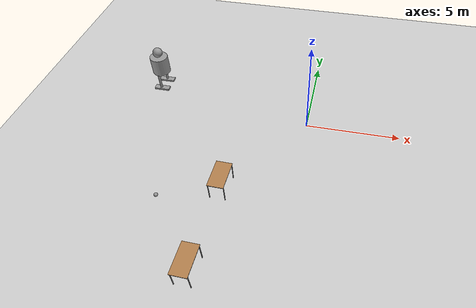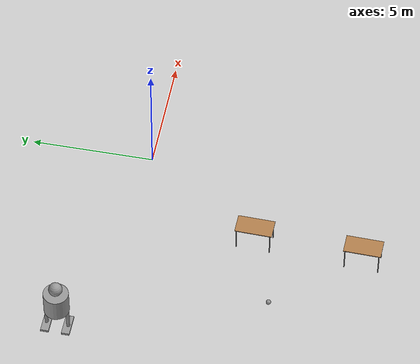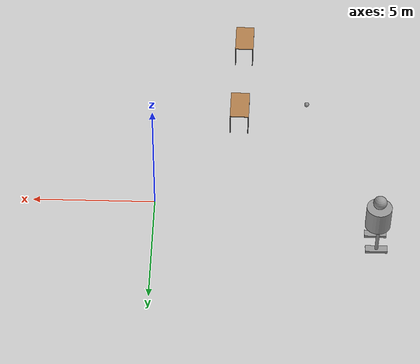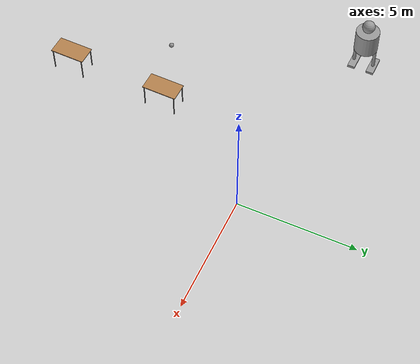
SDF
<sdf version="1.6">
 <world name="default">
  <model name="ground_plane">
   <static>1</static>
   <link name="link">
    <collision name="collision">
     <geometry><plane><normal>0 0 1</normal><size>100 100</size></plane></geometry>
     <surface>
      <contact><collide_bitmask>65535</collide_bitmask></contact>
      <friction><ode><mu>100</mu><mu2>50</mu2></ode></friction>
     </surface>
    </collision>
    <visual name="visual">
     <cast_shadows>0</cast_shadows>
     <geometry><plane><normal>0 0 1</normal><size>100 100</size></plane></geometry>
     <material>
      <script><uri>file://media/materials/scripts/gazebo.material</uri><name>Gazebo/Grey</name></script>
     </material>
    </visual>
   </link>
  </model>
  <model name="table_0_clone_1">
   <static>1</static>
   <link name="link">
    <collision name="surface">
     <pose>0 0 1 0 -0 0</pose>
     <geometry><box><size>1.5 0.8 0.03</size></box></geometry>
     <surface><friction><ode><mu>0.6</mu><mu2>0.6</mu2></ode></friction></surface>
    </collision>
    <visual name="visual1">
     <pose>0 0 1 0 -0 0</pose>
     <geometry><box><size>1.5 0.8 0.03</size></box></geometry>
     <material>
      <script><uri>file://media/materials/scripts/gazebo.material</uri><name>Gazebo/Wood</name></script>
     </material>
    </visual>
    <collision name="front_left_leg">
     <pose>0.68 0.38 0.5 0 -0 0</pose>
     <geometry><cylinder><radius>0.02</radius><length>1</length></cylinder></geometry>
    </collision>
    <visual name="front_left_leg">
     <pose>0.68 0.38 0.5 0 -0 0</pose>
     <geometry><cylinder><radius>0.02</radius><length>1</length></cylinder></geometry>
     <material>
      <script><uri>file://media/materials/scripts/gazebo.material</uri><name>Gazebo/Grey</name></script>
     </material>
    </visual>
    <collision name="front_right_leg">
     <pose>0.68 -0.38 0.5 0 -0 0</pose>
     <geometry><cylinder><radius>0.02</radius><length>1</length></cylinder></geometry>
    </collision>
    <visual name="front_right_leg">
     <pose>0.68 -0.38 0.5 0 -0 0</pose>
     <geometry><cylinder><radius>0.02</radius><length>1</length></cylinder></geometry>
     <material>
      <script><uri>file://media/materials/scripts/gazebo.material</uri><name>Gazebo/Grey</name></script>
     </material>
    </visual>
    <collision name="back_right_leg">
     <pose>-0.68 -0.38 0.5 0 -0 0</pose>
     <geometry><cylinder><radius>0.02</radius><length>1</length></cylinder></geometry>
    </collision>
    <visual name="back_right_leg">
     <pose>-0.68 -0.38 0.5 0 -0 0</pose>
     <geometry><cylinder><radius>0.02</radius><length>1</length></cylinder></geometry>
     <material>
      <script><uri>file://media/materials/scripts/gazebo.material</uri><name>Gazebo/Grey</name></script>
     </material>
    </visual>
    <collision name="back_left_leg">
     <pose>-0.68 0.38 0.5 0 -0 0</pose>
     <geometry><cylinder><radius>0.02</radius><length>1</length></cylinder></geometry>
    </collision>
    <visual name="back_left_leg">
     <pose>-0.68 0.38 0.5 0 -0 0</pose>
     <geometry><cylinder><radius>0.02</radius><length>1</length></cylinder></geometry>
     <material>
      <script><uri>file://media/materials/scripts/gazebo.material</uri><name>Gazebo/Grey</name></script>
     </material>
    </visual>
   </link>
   <pose>-3.58647 -9.28314 0 0 -0 1.54682</pose>
  </model>
  <model name="table_0_clone_2">
   <static>1</static>
   <link name="link">
    <collision name="surface">
     <pose>0 0 1 0 -0 0</pose>
     <geometry><box><size>1.5 0.8 0.03</size></box></geometry>
     <surface><friction><ode><mu>0.6</mu><mu2>0.6</mu2></ode></friction></surface>
    </collision>
    <visual name="visual1">
     <pose>0 0 1 0 -0 0</pose>
     <geometry><box><size>1.5 0.8 0.03</size></box></geometry>
     <material>
      <script><uri>file://media/materials/scripts/gazebo.material</uri><name>Gazebo/Wood</name></script>
     </material>
    </visual>
    <collision name="front_left_leg">
     <pose>0.68 0.38 0.5 0 -0 0</pose>
     <geometry><cylinder><radius>0.02</radius><length>1</length></cylinder></geometry>
    </collision>
    <visual name="front_left_leg">
     <pose>0.68 0.38 0.5 0 -0 0</pose>
     <geometry><cylinder><radius>0.02</radius><length>1</length></cylinder></geometry>
     <material>
      <script><uri>file://media/materials/scripts/gazebo.material</uri><name>Gazebo/Grey</name></script>
     </material>
    </visual>
    <collision name="front_right_leg">
     <pose>0.68 -0.38 0.5 0 -0 0</pose>
     <geometry><cylinder><radius>0.02</radius><length>1</length></cylinder></geometry>
    </collision>
    <visual name="front_right_leg">
     <pose>0.68 -0.38 0.5 0 -0 0</pose>
     <geometry><cylinder><radius>0.02</radius><length>1</length></cylinder></geometry>
     <material>
      <script><uri>file://media/materials/scripts/gazebo.material</uri><name>Gazebo/Grey</name></script>
     </material>
    </visual>
    <collision name="back_right_leg">
     <pose>-0.68 -0.38 0.5 0 -0 0</pose>
     <geometry><cylinder><radius>0.02</radius><length>1</length></cylinder></geometry>
    </collision>
    <visual name="back_right_leg">
     <pose>-0.68 -0.38 0.5 0 -0 0</pose>
     <geometry><cylinder><radius>0.02</radius><length>1</length></cylinder></geometry>
     <material>
      <script><uri>file://media/materials/scripts/gazebo.material</uri><name>Gazebo/Grey</name></script>
     </material>
    </visual>
    <collision name="back_left_leg">
     <pose>-0.68 0.38 0.5 0 -0 0</pose>
     <geometry><cylinder><radius>0.02</radius><length>1</length></cylinder></geometry>
    </collision>
    <visual name="back_left_leg">
     <pose>-0.68 0.38 0.5 0 -0 0</pose>
     <geometry><cylinder><radius>0.02</radius><length>1</length></cylinder></geometry>
     <material>
      <script><uri>file://media/materials/scripts/gazebo.material</uri><name>Gazebo/Grey</name></script>
     </material>
    </visual>
   </link>
   <pose>-3.41319 -4.88777 0 0 -0 1.54682</pose>
  </model>
  <model name="HumanoidRobot_0">
   <link name="link_0">
    <pose>0.00607 -0.402485 -0.763094 0 -0 0</pose>
    <inertial>
     <mass>0.0269632</mass>
     <inertia>
      <ixx>0.00025348</ixx>
      <ixy>0</ixy>
      <ixz>0</ixz>
      <iyy>0.00171945</iyy>
      <iyz>0</iyz>
      <izz>0.00193117</izz>
     </inertia>
    </inertial>
    <visual name="visual">
     <geometry><box><size>0.869453 0.321744 0.096398</size></box></geometry>
     <material>
      <lighting>1</lighting>
      <script><uri>file://media/materials/scripts/gazebo.material</uri><name>Gazebo/Grey</name></script>
      <shader type="pixel"><normal_map>__default__</normal_map></shader>
      <ambient>0.3 0.3 0.3 1</ambient>
      <diffuse>0.7 0.7 0.7 1</diffuse>
      <specular>0.01 0.01 0.01 1</specular>
      <emissive>0 0 0 1</emissive>
     </material>
    </visual>
    <collision name="collision">
     <geometry><box><size>0.869453 0.321744 0.096398</size></box></geometry>
     <surface>
      <friction>
       <ode><mu>1</mu><mu2>1</mu2><fdir1>0 0 0</fdir1><slip1>0</slip1><slip2>0</slip2></ode>
       <torsional>
        <coefficient>1</coefficient>
        <patch_radius>0</patch_radius>
        <surface_radius>0</surface_radius>
        <use_patch_radius>1</use_patch_radius>
        <ode><slip>0</slip></ode>
       </torsional>
      </friction>
      <bounce><restitution_coefficient>0</restitution_coefficient><threshold>1e+06</threshold></bounce>
      <contact>
       <collide_without_contact>0</collide_without_contact>
       <collide_without_contact_bitmask>1</collide_without_contact_bitmask>
       <collide_bitmask>1</collide_bitmask>
       <ode>
        <soft_cfm>0</soft_cfm>
        <soft_erp>0.2</soft_erp>
        <kp>1e+13</kp>
        <kd>1</kd>
        <max_vel>0.01</max_vel>
        <min_depth>0</min_depth>
       </ode>
       <bullet>
        <split_impulse>1</split_impulse>
        <split_impulse_penetration_threshold>-0.01</split_impulse_penetration_threshold>
        <soft_cfm>0</soft_cfm>
        <soft_erp>0.2</soft_erp>
        <kp>1e+13</kp>
        <kd>1</kd>
       </bullet>
      </contact>
     </surface>
    </collision>
   </link>
   <link name="link_0_clone">
    <pose>0.00607 0.426759 -0.763093 0 -0 0</pose>
    <inertial>
     <mass>0.0269632</mass>
     <inertia>
      <ixx>0.00025348</ixx>
      <ixy>0</ixy>
      <ixz>0</ixz>
      <iyy>0.00171945</iyy>
      <iyz>0</iyz>
      <izz>0.00193117</izz>
     </inertia>
    </inertial>
    <visual name="visual">
     <geometry><box><size>0.869453 0.321744 0.096398</size></box></geometry>
     <material>
      <lighting>1</lighting>
      <script><uri>file://media/materials/scripts/gazebo.material</uri><name>Gazebo/Grey</name></script>
      <shader type="pixel"><normal_map>__default__</normal_map></shader>
      <ambient>0.3 0.3 0.3 1</ambient>
      <diffuse>0.7 0.7 0.7 1</diffuse>
      <specular>0.01 0.01 0.01 1</specular>
      <emissive>0 0 0 1</emissive>
     </material>
    </visual>
    <collision name="collision">
     <geometry><box><size>0.869453 0.321744 0.096398</size></box></geometry>
     <surface>
      <friction>
       <ode><mu>1</mu><mu2>1</mu2><fdir1>0 0 0</fdir1><slip1>0</slip1><slip2>0</slip2></ode>
       <torsional>
        <coefficient>1</coefficient>
        <patch_radius>0</patch_radius>
        <surface_radius>0</surface_radius>
        <use_patch_radius>1</use_patch_radius>
        <ode><slip>0</slip></ode>
       </torsional>
      </friction>
      <bounce><restitution_coefficient>0</restitution_coefficient><threshold>1e+06</threshold></bounce>
      <contact>
       <collide_without_contact>0</collide_without_contact>
       <collide_without_contact_bitmask>1</collide_without_contact_bitmask>
       <collide_bitmask>1</collide_bitmask>
       <ode>
        <soft_cfm>0</soft_cfm>
        <soft_erp>0.2</soft_erp>
        <kp>1e+13</kp>
        <kd>1</kd>
        <max_vel>0.01</max_vel>
        <min_depth>0</min_depth>
       </ode>
       <bullet>
        <split_impulse>1</split_impulse>
        <split_impulse_penetration_threshold>-0.01</split_impulse_penetration_threshold>
        <soft_cfm>0</soft_cfm>
        <soft_erp>0.2</soft_erp>
        <kp>1e+13</kp>
        <kd>1</kd>
       </bullet>
      </contact>
     </surface>
    </collision>
   </link>
   <link name="link_1">
    <pose>-0.030345 -0.4389 -0.311292 0 -0 0</pose>
    <inertial>
     <mass>0.0180474</mass>
     <inertia>
      <ixx>0.00152431</ixx>
      <ixy>0</ixy>
      <ixz>0</ixz>
      <iyy>0.00152431</iyy>
      <iyz>0</iyz>
      <izz>4.07136e-05</izz>
     </inertia>
    </inertial>
    <visual name="visual">
     <geometry><cylinder><radius>0.0671703</radius><length>1</length></cylinder></geometry>
     <material>
      <lighting>1</lighting>
      <script><uri>file://media/materials/scripts/gazebo.material</uri><name>Gazebo/Grey</name></script>
      <shader type="pixel"/>
      <ambient>0.3 0.3 0.3 1</ambient>
      <diffuse>0.7 0.7 0.7 1</diffuse>
      <specular>0.01 0.01 0.01 1</specular>
      <emissive>0 0 0 1</emissive>
     </material>
    </visual>
    <collision name="collision">
     <geometry><cylinder><radius>0.06717</radius><length>1</length></cylinder></geometry>
     <surface>
      <friction>
       <ode><mu>1</mu><mu2>1</mu2><fdir1>0 0 0</fdir1><slip1>0</slip1><slip2>0</slip2></ode>
       <torsional>
        <coefficient>1</coefficient>
        <patch_radius>0</patch_radius>
        <surface_radius>0</surface_radius>
        <use_patch_radius>1</use_patch_radius>
        <ode><slip>0</slip></ode>
       </torsional>
      </friction>
      <bounce><restitution_coefficient>0</restitution_coefficient><threshold>1e+06</threshold></bounce>
      <contact>
       <collide_without_contact>0</collide_without_contact>
       <collide_without_contact_bitmask>1</collide_without_contact_bitmask>
       <collide_bitmask>1</collide_bitmask>
       <ode>
        <soft_cfm>0</soft_cfm>
        <soft_erp>0.2</soft_erp>
        <kp>1e+13</kp>
        <kd>1</kd>
        <max_vel>0.01</max_vel>
        <min_depth>0</min_depth>
       </ode>
       <bullet>
        <split_impulse>1</split_impulse>
        <split_impulse_penetration_threshold>-0.01</split_impulse_penetration_threshold>
        <soft_cfm>0</soft_cfm>
        <soft_erp>0.2</soft_erp>
        <kp>1e+13</kp>
        <kd>1</kd>
       </bullet>
      </contact>
     </surface>
    </collision>
   </link>
   <link name="link_1_clone">
    <pose>0.00607 0.426759 -0.311292 0 -0 0</pose>
    <inertial>
     <mass>0.0180474</mass>
     <inertia>
      <ixx>0.00152431</ixx>
      <ixy>0</ixy>
      <ixz>0</ixz>
      <iyy>0.00152431</iyy>
      <iyz>0</iyz>
      <izz>4.07136e-05</izz>
     </inertia>
    </inertial>
    <visual name="visual">
     <geometry><cylinder><radius>0.0671703</radius><length>1</length></cylinder></geometry>
     <material>
      <lighting>1</lighting>
      <script><uri>file://media/materials/scripts/gazebo.material</uri><name>Gazebo/Grey</name></script>
      <shader type="pixel"/>
      <ambient>0.3 0.3 0.3 1</ambient>
      <diffuse>0.7 0.7 0.7 1</diffuse>
      <specular>0.01 0.01 0.01 1</specular>
      <emissive>0 0 0 1</emissive>
     </material>
    </visual>
    <collision name="collision">
     <geometry><cylinder><radius>0.06717</radius><length>1</length></cylinder></geometry>
     <surface>
      <friction>
       <ode><mu>1</mu><mu2>1</mu2><fdir1>0 0 0</fdir1><slip1>0</slip1><slip2>0</slip2></ode>
       <torsional>
        <coefficient>1</coefficient>
        <patch_radius>0</patch_radius>
        <surface_radius>0</surface_radius>
        <use_patch_radius>1</use_patch_radius>
        <ode><slip>0</slip></ode>
       </torsional>
      </friction>
      <bounce><restitution_coefficient>0</restitution_coefficient><threshold>1e+06</threshold></bounce>
      <contact>
       <collide_without_contact>0</collide_without_contact>
       <collide_without_contact_bitmask>1</collide_without_contact_bitmask>
       <collide_bitmask>1</collide_bitmask>
       <ode>
        <soft_cfm>0</soft_cfm>
        <soft_erp>0.2</soft_erp>
        <kp>1e+13</kp>
        <kd>1</kd>
        <max_vel>0.01</max_vel>
        <min_depth>0</min_depth>
       </ode>
       <bullet>
        <split_impulse>1</split_impulse>
        <split_impulse_penetration_threshold>-0.01</split_impulse_penetration_threshold>
        <soft_cfm>0</soft_cfm>
        <soft_erp>0.2</soft_erp>
        <kp>1e+13</kp>
        <kd>1</kd>
       </bullet>
      </contact>
     </surface>
    </collision>
   </link>
   <link name="link_2">
    <pose>0.00607 -0.00607 0.688708 0 -0 0</pose>
    <inertial>
     <mass>1</mass>
     <inertia><ixx>0.145833</ixx><ixy>0</ixy><ixz>0</ixz><iyy>0.145833</iyy><iyz>0</iyz><izz>0.125</izz></inertia>
    </inertial>
    <visual name="visual">
     <geometry><cylinder><radius>0.5</radius><length>1</length></cylinder></geometry>
     <material>
      <lighting>1</lighting>
      <script><uri>file://media/materials/scripts/gazebo.material</uri><name>Gazebo/Grey</name></script>
      <shader type="pixel"/>
      <ambient>0.3 0.3 0.3 1</ambient>
      <diffuse>0.7 0.7 0.7 1</diffuse>
      <specular>0.01 0.01 0.01 1</specular>
      <emissive>0 0 0 1</emissive>
     </material>
    </visual>
    <collision name="collision">
     <geometry><cylinder><radius>0.5</radius><length>1</length></cylinder></geometry>
     <surface>
      <friction>
       <ode><mu>1</mu><mu2>1</mu2><fdir1>0 0 0</fdir1><slip1>0</slip1><slip2>0</slip2></ode>
       <torsional>
        <coefficient>1</coefficient>
        <patch_radius>0</patch_radius>
        <surface_radius>0</surface_radius>
        <use_patch_radius>1</use_patch_radius>
        <ode><slip>0</slip></ode>
       </torsional>
      </friction>
      <bounce><restitution_coefficient>0</restitution_coefficient><threshold>1e+06</threshold></bounce>
      <contact>
       <collide_without_contact>0</collide_without_contact>
       <collide_without_contact_bitmask>1</collide_without_contact_bitmask>
       <collide_bitmask>1</collide_bitmask>
       <ode>
        <soft_cfm>0</soft_cfm>
        <soft_erp>0.2</soft_erp>
        <kp>1e+13</kp>
        <kd>1</kd>
        <max_vel>0.01</max_vel>
        <min_depth>0</min_depth>
       </ode>
       <bullet>
        <split_impulse>1</split_impulse>
        <split_impulse_penetration_threshold>-0.01</split_impulse_penetration_threshold>
        <soft_cfm>0</soft_cfm>
        <soft_erp>0.2</soft_erp>
        <kp>1e+13</kp>
        <kd>1</kd>
       </bullet>
      </contact>
     </surface>
    </collision>
   </link>
   <link name="link_3">
    <pose>0.00607 -0.00607 1.46007 0 -0 0</pose>
    <inertial>
     <mass>0.159872</mass>
     <inertia>
      <ixx>0.00470902</ixx>
      <ixy>0</ixy>
      <ixz>0</ixz>
      <iyy>0.00470902</iyy>
      <iyz>0</iyz>
      <izz>0.00470902</izz>
     </inertia>
    </inertial>
    <visual name="visual">
     <geometry><sphere><radius>0.271362</radius></sphere></geometry>
     <material>
      <lighting>1</lighting>
      <script><uri>file://media/materials/scripts/gazebo.material</uri><name>Gazebo/Grey</name></script>
      <shader type="pixel"/>
      <ambient>0.3 0.3 0.3 1</ambient>
      <diffuse>0.7 0.7 0.7 1</diffuse>
      <specular>0.01 0.01 0.01 1</specular>
      <emissive>0 0 0 1</emissive>
     </material>
    </visual>
    <collision name="collision">
     <geometry><sphere><radius>0.271362</radius></sphere></geometry>
     <surface>
      <friction>
       <ode><mu>1</mu><mu2>1</mu2><fdir1>0 0 0</fdir1><slip1>0</slip1><slip2>0</slip2></ode>
       <torsional>
        <coefficient>1</coefficient>
        <patch_radius>0</patch_radius>
        <surface_radius>0</surface_radius>
        <use_patch_radius>1</use_patch_radius>
        <ode><slip>0</slip></ode>
       </torsional>
      </friction>
      <bounce><restitution_coefficient>0</restitution_coefficient><threshold>1e+06</threshold></bounce>
      <contact>
       <collide_without_contact>0</collide_without_contact>
       <collide_without_contact_bitmask>1</collide_without_contact_bitmask>
       <collide_bitmask>1</collide_bitmask>
       <ode>
        <soft_cfm>0</soft_cfm>
        <soft_erp>0.2</soft_erp>
        <kp>1e+13</kp>
        <kd>1</kd>
        <max_vel>0.01</max_vel>
        <min_depth>0</min_depth>
       </ode>
       <bullet>
        <split_impulse>1</split_impulse>
        <split_impulse_penetration_threshold>-0.01</split_impulse_penetration_threshold>
        <soft_cfm>0</soft_cfm>
        <soft_erp>0.2</soft_erp>
        <kp>1e+13</kp>
        <kd>1</kd>
       </bullet>
      </contact>
     </surface>
    </collision>
   </link>
   <joint name="link_0_JOINT_0" type="fixed">
    <parent>link_0</parent>
    <child>link_1</child>
    <physics>
     <ode><limit><cfm>0</cfm><erp>0.2</erp></limit><suspension><cfm>0</cfm><erp>0.2</erp></suspension></ode>
    </physics>
   </joint>
   <joint name="link_1_JOINT_1" type="fixed">
    <parent>link_1</parent>
    <child>link_2</child>
    <physics>
     <ode><limit><cfm>0</cfm><erp>0.2</erp></limit><suspension><cfm>0</cfm><erp>0.2</erp></suspension></ode>
    </physics>
   </joint>
   <joint name="link_1_clone_JOINT_3" type="fixed">
    <parent>link_1_clone</parent>
    <child>link_0_clone</child>
    <physics>
     <ode><limit><cfm>0</cfm><erp>0.2</erp></limit><suspension><cfm>0</cfm><erp>0.2</erp></suspension></ode>
    </physics>
   </joint>
   <joint name="link_2_JOINT_2" type="fixed">
    <parent>link_2</parent>
    <child>link_1_clone</child>
    <physics>
     <ode><limit><cfm>0</cfm><erp>0.2</erp></limit><suspension><cfm>0</cfm><erp>0.2</erp></suspension></ode>
    </physics>
   </joint>
   <joint name="link_2_JOINT_5" type="fixed">
    <parent>link_2</parent>
    <child>link_3</child>
    <physics>
     <ode><limit><cfm>0</cfm><erp>0.2</erp></limit><suspension><cfm>0</cfm><erp>0.2</erp></suspension></ode>
    </physics>
   </joint>
   <static>0</static>
   <pose>-8.92697 1.92926 0.811284 -2e-05 -1e-06 -0.000706</pose>
  </model>
  <model name="my_ball">
   <link name="link_0">
    <inertial>
     <mass>1</mass>
     <inertia><ixx>0.1</ixx><ixy>0</ixy><ixz>0</ixz><iyy>0.1</iyy><iyz>0</iyz><izz>0.1</izz></inertia>
    </inertial>
    <visual name="visual">
     <geometry><sphere><radius>0.1</radius></sphere></geometry>
     <material>
      <lighting>1</lighting>
      <script><uri>file://media/materials/scripts/gazebo.material</uri><name>Gazebo/Grey</name></script>
      <shader type="pixel"><normal_map>__default__</normal_map></shader>
      <ambient>0.3 0.3 0.3 1</ambient>
      <diffuse>1 1 1 1</diffuse>
      <specular>1 1 1 1</specular>
      <emissive>1 1 1 1</emissive>
     </material>
    </visual>
    <collision name="collision">
     <geometry><sphere><radius>0.1</radius></sphere></geometry>
     <surface>
      <friction>
       <ode><mu>1</mu><mu2>1</mu2><fdir1>0 0 0</fdir1><slip1>0</slip1><slip2>0</slip2></ode>
       <torsional>
        <coefficient>1</coefficient>
        <patch_radius>0</patch_radius>
        <surface_radius>0</surface_radius>
        <use_patch_radius>1</use_patch_radius>
        <ode><slip>0</slip></ode>
       </torsional>
      </friction>
      <bounce><restitution_coefficient>0</restitution_coefficient><threshold>1e+06</threshold></bounce>
      <contact>
       <collide_without_contact>0</collide_without_contact>
       <collide_without_contact_bitmask>1</collide_without_contact_bitmask>
       <collide_bitmask>1</collide_bitmask>
       <ode>
        <soft_cfm>0</soft_cfm>
        <soft_erp>0.2</soft_erp>
        <kp>1e+13</kp>
        <kd>1</kd>
        <max_vel>0.01</max_vel>
        <min_depth>0</min_depth>
       </ode>
       <bullet>
        <split_impulse>1</split_impulse>
        <split_impulse_penetration_threshold>-0.01</split_impulse_penetration_threshold>
        <soft_cfm>0</soft_cfm>
        <soft_erp>0.2</soft_erp>
        <kp>1e+13</kp>
        <kd>1</kd>
       </bullet>
      </contact>
     </surface>
    </collision>
   </link>
   <static>0</static>
   <pose>-6.33382 -5.97021 0.1 0 -0 0</pose>
  </model>
 </world>
</sdf>
